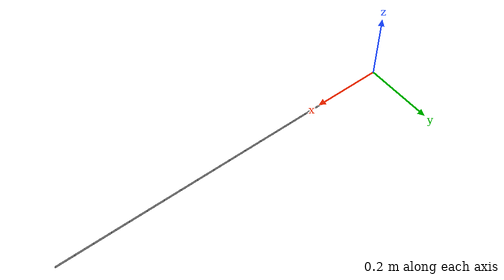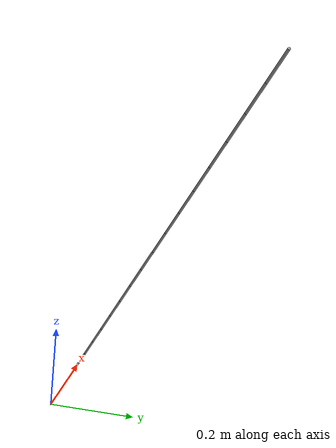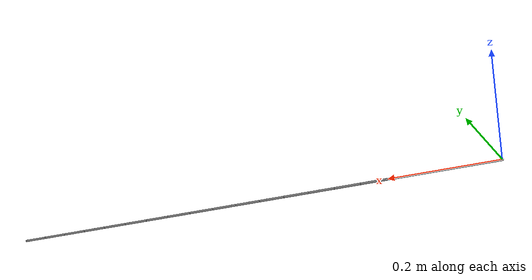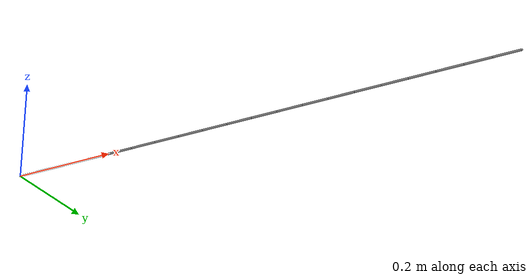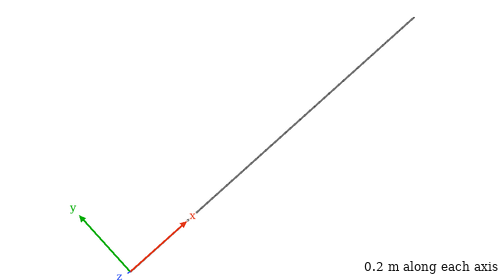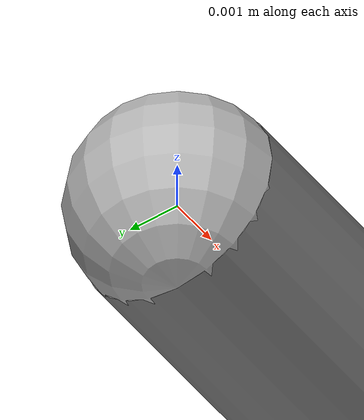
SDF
<?xml version="1.0" encoding="UTF-8"?>
<sdf version='1.9'>
  <model name='rope'>
    <enable_wind>true</enable_wind>
    <static>false</static>
    <link name='begin_link'>
      <pose>0 0 0 0 0 0</pose>
      <inertial>
        <mass>0.001</mass>
        <inertia>
          <ixx>4e-08</ixx>
          <iyy>4e-08</iyy>
          <izz>4e-08</izz>
        </inertia>
      </inertial>
       <collision name='begin_link_collision'>
        <geometry>
          <sphere>
            <radius>0.002</radius>
          </sphere>
        </geometry>
      </collision>
      <visual name='begin_link_visual'>
        <geometry>
          <sphere>
            <radius>0.002</radius>
          </sphere>
        </geometry>
      </visual>
    </link>
    <link name='link_0'>
      <pose>0.025 0 0 0 1.570796326794896558 0</pose>
      <inertial>
        <mass>0.0024</mass>
        <inertia>
          <ixx>5.1e-05</ixx>
          <iyy>5.1e-05</iyy>
          <izz>3.0e-06</izz>
        </inertia>
      </inertial>
       <collision name='link_0_collision'>
        <geometry>
          <cylinder>
            <length>0.05</length>
            <radius>0.002</radius>
          </cylinder>
        </geometry>
      </collision>
      <visual name='link_0_vis'>
        <geometry>
          <cylinder>
            <length>0.05</length>
            <radius>0.002</radius>
          </cylinder>
        </geometry>
        <material>
          <ambient>0.5 0.5 0.5 1</ambient>
          <diffuse>0.5 0.5 0.5 1</diffuse>
          <specular>0.5 0.5 0.5 1</specular>
        </material>
      </visual>
      <velocity_decay>
        <linear>0.1</linear>
        <angular>0.1</angular>
      </velocity_decay>
    </link>
    <joint name='begin_joint_2' type='universal'>
      <pose relative_to='begin_link'/>
      <child>link_0</child>
      <parent>begin_link</parent>
      <axis>
        <xyz>1 0 0</xyz>
        <dynamics>
          <damping>0.05</damping>
        </dynamics>
      </axis>
      <axis2>
        <xyz>0 1 0</xyz>
        <dynamics>
          <damping>0.05</damping>
        </dynamics>
      </axis2>
    </joint>

    <link name='link_1'>
      <pose>0.07500000000000001 0 0 0 1.570796326794896558 0</pose>
      <inertial>
        <mass>0.0024</mass>
        <inertia>
          <ixx>5.1e-05</ixx>
          <iyy>5.1e-05</iyy>
          <izz>3.0e-06</izz>
        </inertia>
      </inertial>
       <collision name='link_1_collision'>
        <geometry>
          <cylinder>
            <length>0.05</length>
            <radius>0.002</radius>
          </cylinder>
        </geometry>
      </collision>
      <visual name='link_1_vis'>
        <geometry>
          <cylinder>
            <length>0.05</length>
            <radius>0.002</radius>
          </cylinder>
        </geometry>
        <material>
          <ambient>0.5 0.5 0.5 1</ambient>
          <diffuse>0.5 0.5 0.5 1</diffuse>
          <specular>0.5 0.5 0.5 1</specular>
        </material>
      </visual>
      <velocity_decay>
        <linear>0.1</linear>
        <angular>0.1</angular>
      </velocity_decay>
    </link>
    <joint name='joint_1_2' type='universal'>
      <pose relative_to='link_0'>0 0 0.025 0 0 0</pose>
      <child>link_1</child>
      <parent>link_0</parent>
      <axis>
        <xyz expressed_in='link_0'>1 0 0</xyz>
        <limit>
          <lower>-3.141592653589793</lower>
          <upper>3.141592653589793</upper>
          <effort>50.0</effort>
          <velocity>10</velocity>
        </limit>
        <dynamics>
          <damping>0.05</damping>
        </dynamics>
      </axis>
      <axis2>
        <xyz expressed_in='link_0'>0 1 0</xyz>
        <limit>
          <lower>-3.141592653589793</lower>
          <upper>3.141592653589793</upper>
          <effort>50.0</effort>
          <velocity>10</velocity>
        </limit>
        <dynamics>
          <damping>0.05</damping>
        </dynamics>
      </axis2>
    </joint>
    <link name='link_2'>
      <pose>0.125 0 0 0 1.570796326794896558 0</pose>
      <inertial>
        <mass>0.0024</mass>
        <inertia>
          <ixx>5.1e-05</ixx>
          <iyy>5.1e-05</iyy>
          <izz>3.0e-06</izz>
        </inertia>
      </inertial>
       <collision name='link_2_collision'>
        <geometry>
          <cylinder>
            <length>0.05</length>
            <radius>0.002</radius>
          </cylinder>
        </geometry>
      </collision>
      <visual name='link_2_vis'>
        <geometry>
          <cylinder>
            <length>0.05</length>
            <radius>0.002</radius>
          </cylinder>
        </geometry>
        <material>
          <ambient>0.5 0.5 0.5 1</ambient>
          <diffuse>0.5 0.5 0.5 1</diffuse>
          <specular>0.5 0.5 0.5 1</specular>
        </material>
      </visual>
      <velocity_decay>
        <linear>0.1</linear>
        <angular>0.1</angular>
      </velocity_decay>
    </link>
    <joint name='joint_2_2' type='universal'>
      <pose relative_to='link_1'>0 0 0.025 0 0 0</pose>
      <child>link_2</child>
      <parent>link_1</parent>
      <axis>
        <xyz expressed_in='link_1'>1 0 0</xyz>
        <limit>
          <lower>-3.141592653589793</lower>
          <upper>3.141592653589793</upper>
          <effort>50.0</effort>
          <velocity>10</velocity>
        </limit>
        <dynamics>
          <damping>0.05</damping>
        </dynamics>
      </axis>
      <axis2>
        <xyz expressed_in='link_1'>0 1 0</xyz>
        <limit>
          <lower>-3.141592653589793</lower>
          <upper>3.141592653589793</upper>
          <effort>50.0</effort>
          <velocity>10</velocity>
        </limit>
        <dynamics>
          <damping>0.05</damping>
        </dynamics>
      </axis2>
    </joint>
    <link name='link_3'>
      <pose>0.17500000000000002 0 0 0 1.570796326794896558 0</pose>
      <inertial>
        <mass>0.0024</mass>
        <inertia>
          <ixx>5.1e-05</ixx>
          <iyy>5.1e-05</iyy>
          <izz>3.0e-06</izz>
        </inertia>
      </inertial>
       <collision name='link_3_collision'>
        <geometry>
          <cylinder>
            <length>0.05</length>
            <radius>0.002</radius>
          </cylinder>
        </geometry>
      </collision>
      <visual name='link_3_vis'>
        <geometry>
          <cylinder>
            <length>0.05</length>
            <radius>0.002</radius>
          </cylinder>
        </geometry>
        <material>
          <ambient>0.5 0.5 0.5 1</ambient>
          <diffuse>0.5 0.5 0.5 1</diffuse>
          <specular>0.5 0.5 0.5 1</specular>
        </material>
      </visual>
      <velocity_decay>
        <linear>0.1</linear>
        <angular>0.1</angular>
      </velocity_decay>
    </link>
    <joint name='joint_3_2' type='universal'>
      <pose relative_to='link_2'>0 0 0.025 0 0 0</pose>
      <child>link_3</child>
      <parent>link_2</parent>
      <axis>
        <xyz expressed_in='link_2'>1 0 0</xyz>
        <limit>
          <lower>-3.141592653589793</lower>
          <upper>3.141592653589793</upper>
          <effort>50.0</effort>
          <velocity>10</velocity>
        </limit>
        <dynamics>
          <damping>0.05</damping>
        </dynamics>
      </axis>
      <axis2>
        <xyz expressed_in='link_2'>0 1 0</xyz>
        <limit>
          <lower>-3.141592653589793</lower>
          <upper>3.141592653589793</upper>
          <effort>50.0</effort>
          <velocity>10</velocity>
        </limit>
        <dynamics>
          <damping>0.05</damping>
        </dynamics>
      </axis2>
    </joint>
    <link name='link_4'>
      <pose>0.225 0 0 0 1.570796326794896558 0</pose>
      <inertial>
        <mass>0.0024</mass>
        <inertia>
          <ixx>5.1e-05</ixx>
          <iyy>5.1e-05</iyy>
          <izz>3.0e-06</izz>
        </inertia>
      </inertial>
       <collision name='link_4_collision'>
        <geometry>
          <cylinder>
            <length>0.05</length>
            <radius>0.002</radius>
          </cylinder>
        </geometry>
      </collision>
      <visual name='link_4_vis'>
        <geometry>
          <cylinder>
            <length>0.05</length>
            <radius>0.002</radius>
          </cylinder>
        </geometry>
        <material>
          <ambient>0.5 0.5 0.5 1</ambient>
          <diffuse>0.5 0.5 0.5 1</diffuse>
          <specular>0.5 0.5 0.5 1</specular>
        </material>
      </visual>
      <velocity_decay>
        <linear>0.1</linear>
        <angular>0.1</angular>
      </velocity_decay>
    </link>
    <joint name='joint_4_2' type='universal'>
      <pose relative_to='link_3'>0 0 0.025 0 0 0</pose>
      <child>link_4</child>
      <parent>link_3</parent>
      <axis>
        <xyz expressed_in='link_3'>1 0 0</xyz>
        <limit>
          <lower>-3.141592653589793</lower>
          <upper>3.141592653589793</upper>
          <effort>50.0</effort>
          <velocity>10</velocity>
        </limit>
        <dynamics>
          <damping>0.05</damping>
        </dynamics>
      </axis>
      <axis2>
        <xyz expressed_in='link_3'>0 1 0</xyz>
        <limit>
          <lower>-3.141592653589793</lower>
          <upper>3.141592653589793</upper>
          <effort>50.0</effort>
          <velocity>10</velocity>
        </limit>
        <dynamics>
          <damping>0.05</damping>
        </dynamics>
      </axis2>
    </joint>
    <link name='link_5'>
      <pose>0.275 0 0 0 1.570796326794896558 0</pose>
      <inertial>
        <mass>0.0024</mass>
        <inertia>
          <ixx>5.1e-05</ixx>
          <iyy>5.1e-05</iyy>
          <izz>3.0e-06</izz>
        </inertia>
      </inertial>
       <collision name='link_5_collision'>
        <geometry>
          <cylinder>
            <length>0.05</length>
            <radius>0.002</radius>
          </cylinder>
        </geometry>
      </collision>
      <visual name='link_5_vis'>
        <geometry>
          <cylinder>
            <length>0.05</length>
            <radius>0.002</radius>
          </cylinder>
        </geometry>
        <material>
          <ambient>0.5 0.5 0.5 1</ambient>
          <diffuse>0.5 0.5 0.5 1</diffuse>
          <specular>0.5 0.5 0.5 1</specular>
        </material>
      </visual>
      <velocity_decay>
        <linear>0.1</linear>
        <angular>0.1</angular>
      </velocity_decay>
    </link>
    <joint name='joint_5_2' type='universal'>
      <pose relative_to='link_4'>0 0 0.025 0 0 0</pose>
      <child>link_5</child>
      <parent>link_4</parent>
      <axis>
        <xyz expressed_in='link_4'>1 0 0</xyz>
        <limit>
          <lower>-3.141592653589793</lower>
          <upper>3.141592653589793</upper>
          <effort>50.0</effort>
          <velocity>10</velocity>
        </limit>
        <dynamics>
          <damping>0.05</damping>
        </dynamics>
      </axis>
      <axis2>
        <xyz expressed_in='link_4'>0 1 0</xyz>
        <limit>
          <lower>-3.141592653589793</lower>
          <upper>3.141592653589793</upper>
          <effort>50.0</effort>
          <velocity>10</velocity>
        </limit>
        <dynamics>
          <damping>0.05</damping>
        </dynamics>
      </axis2>
    </joint>
    <link name='link_6'>
      <pose>0.32500000000000007 0 0 0 1.570796326794896558 0</pose>
      <inertial>
        <mass>0.0024</mass>
        <inertia>
          <ixx>5.1e-05</ixx>
          <iyy>5.1e-05</iyy>
          <izz>3.0e-06</izz>
        </inertia>
      </inertial>
       <collision name='link_6_collision'>
        <geometry>
          <cylinder>
            <length>0.05</length>
            <radius>0.002</radius>
          </cylinder>
        </geometry>
      </collision>
      <visual name='link_6_vis'>
        <geometry>
          <cylinder>
            <length>0.05</length>
            <radius>0.002</radius>
          </cylinder>
        </geometry>
        <material>
          <ambient>0.5 0.5 0.5 1</ambient>
          <diffuse>0.5 0.5 0.5 1</diffuse>
          <specular>0.5 0.5 0.5 1</specular>
        </material>
      </visual>
      <velocity_decay>
        <linear>0.1</linear>
        <angular>0.1</angular>
      </velocity_decay>
    </link>
    <joint name='joint_6_2' type='universal'>
      <pose relative_to='link_5'>0 0 0.025 0 0 0</pose>
      <child>link_6</child>
      <parent>link_5</parent>
      <axis>
        <xyz expressed_in='link_5'>1 0 0</xyz>
        <limit>
          <lower>-3.141592653589793</lower>
          <upper>3.141592653589793</upper>
          <effort>50.0</effort>
          <velocity>10</velocity>
        </limit>
        <dynamics>
          <damping>0.05</damping>
        </dynamics>
      </axis>
      <axis2>
        <xyz expressed_in='link_5'>0 1 0</xyz>
        <limit>
          <lower>-3.141592653589793</lower>
          <upper>3.141592653589793</upper>
          <effort>50.0</effort>
          <velocity>10</velocity>
        </limit>
        <dynamics>
          <damping>0.05</damping>
        </dynamics>
      </axis2>
    </joint>
    <link name='link_7'>
      <pose>0.37500000000000006 0 0 0 1.570796326794896558 0</pose>
      <inertial>
        <mass>0.0024</mass>
        <inertia>
          <ixx>5.1e-05</ixx>
          <iyy>5.1e-05</iyy>
          <izz>3.0e-06</izz>
        </inertia>
      </inertial>
       <collision name='link_7_collision'>
        <geometry>
          <cylinder>
            <length>0.05</length>
            <radius>0.002</radius>
          </cylinder>
        </geometry>
      </collision>
      <visual name='link_7_vis'>
        <geometry>
          <cylinder>
            <length>0.05</length>
            <radius>0.002</radius>
          </cylinder>
        </geometry>
        <material>
          <ambient>0.5 0.5 0.5 1</ambient>
          <diffuse>0.5 0.5 0.5 1</diffuse>
          <specular>0.5 0.5 0.5 1</specular>
        </material>
      </visual>
      <velocity_decay>
        <linear>0.1</linear>
        <angular>0.1</angular>
      </velocity_decay>
    </link>
    <joint name='joint_7_2' type='universal'>
      <pose relative_to='link_6'>0 0 0.025 0 0 0</pose>
      <child>link_7</child>
      <parent>link_6</parent>
      <axis>
        <xyz expressed_in='link_6'>1 0 0</xyz>
        <limit>
          <lower>-3.141592653589793</lower>
          <upper>3.141592653589793</upper>
          <effort>50.0</effort>
          <velocity>10</velocity>
        </limit>
        <dynamics>
          <damping>0.05</damping>
        </dynamics>
      </axis>
      <axis2>
        <xyz expressed_in='link_6'>0 1 0</xyz>
        <limit>
          <lower>-3.141592653589793</lower>
          <upper>3.141592653589793</upper>
          <effort>50.0</effort>
          <velocity>10</velocity>
        </limit>
        <dynamics>
          <damping>0.05</damping>
        </dynamics>
      </axis2>
    </joint>
    <link name='link_8'>
      <pose>0.42500000000000004 0 0 0 1.570796326794896558 0</pose>
      <inertial>
        <mass>0.0024</mass>
        <inertia>
          <ixx>5.1e-05</ixx>
          <iyy>5.1e-05</iyy>
          <izz>3.0e-06</izz>
        </inertia>
      </inertial>
       <collision name='link_8_collision'>
        <geometry>
          <cylinder>
            <length>0.05</length>
            <radius>0.002</radius>
          </cylinder>
        </geometry>
      </collision>
      <visual name='link_8_vis'>
        <geometry>
          <cylinder>
            <length>0.05</length>
            <radius>0.002</radius>
          </cylinder>
        </geometry>
        <material>
          <ambient>0.5 0.5 0.5 1</ambient>
          <diffuse>0.5 0.5 0.5 1</diffuse>
          <specular>0.5 0.5 0.5 1</specular>
        </material>
      </visual>
      <velocity_decay>
        <linear>0.1</linear>
        <angular>0.1</angular>
      </velocity_decay>
    </link>
    <joint name='joint_8_2' type='universal'>
      <pose relative_to='link_7'>0 0 0.025 0 0 0</pose>
      <child>link_8</child>
      <parent>link_7</parent>
      <axis>
        <xyz expressed_in='link_7'>1 0 0</xyz>
        <limit>
          <lower>-3.141592653589793</lower>
          <upper>3.141592653589793</upper>
          <effort>50.0</effort>
          <velocity>10</velocity>
        </limit>
        <dynamics>
          <damping>0.05</damping>
        </dynamics>
      </axis>
      <axis2>
        <xyz expressed_in='link_7'>0 1 0</xyz>
        <limit>
          <lower>-3.141592653589793</lower>
          <upper>3.141592653589793</upper>
          <effort>50.0</effort>
          <velocity>10</velocity>
        </limit>
        <dynamics>
          <damping>0.05</damping>
        </dynamics>
      </axis2>
    </joint>
    <link name='link_9'>
      <pose>0.47500000000000003 0 0 0 1.570796326794896558 0</pose>
      <inertial>
        <mass>0.0024</mass>
        <inertia>
          <ixx>5.1e-05</ixx>
          <iyy>5.1e-05</iyy>
          <izz>3.0e-06</izz>
        </inertia>
      </inertial>
       <collision name='link_9_collision'>
        <geometry>
          <cylinder>
            <length>0.05</length>
            <radius>0.002</radius>
          </cylinder>
        </geometry>
      </collision>
      <visual name='link_9_vis'>
        <geometry>
          <cylinder>
            <length>0.05</length>
            <radius>0.002</radius>
          </cylinder>
        </geometry>
        <material>
          <ambient>0.5 0.5 0.5 1</ambient>
          <diffuse>0.5 0.5 0.5 1</diffuse>
          <specular>0.5 0.5 0.5 1</specular>
        </material>
      </visual>
      <velocity_decay>
        <linear>0.1</linear>
        <angular>0.1</angular>
      </velocity_decay>
    </link>
    <joint name='joint_9_2' type='universal'>
      <pose relative_to='link_8'>0 0 0.025 0 0 0</pose>
      <child>link_9</child>
      <parent>link_8</parent>
      <axis>
        <xyz expressed_in='link_8'>1 0 0</xyz>
        <limit>
          <lower>-3.141592653589793</lower>
          <upper>3.141592653589793</upper>
          <effort>50.0</effort>
          <velocity>10</velocity>
        </limit>
        <dynamics>
          <damping>0.05</damping>
        </dynamics>
      </axis>
      <axis2>
        <xyz expressed_in='link_8'>0 1 0</xyz>
        <limit>
          <lower>-3.141592653589793</lower>
          <upper>3.141592653589793</upper>
          <effort>50.0</effort>
          <velocity>10</velocity>
        </limit>
        <dynamics>
          <damping>0.05</damping>
        </dynamics>
      </axis2>
    </joint>
    <link name='link_10'>
      <pose>0.525 0 0 0 1.570796326794896558 0</pose>
      <inertial>
        <mass>0.0024</mass>
        <inertia>
          <ixx>5.1e-05</ixx>
          <iyy>5.1e-05</iyy>
          <izz>3.0e-06</izz>
        </inertia>
      </inertial>
       <collision name='link_10_collision'>
        <geometry>
          <cylinder>
            <length>0.05</length>
            <radius>0.002</radius>
          </cylinder>
        </geometry>
      </collision>
      <visual name='link_10_vis'>
        <geometry>
          <cylinder>
            <length>0.05</length>
            <radius>0.002</radius>
          </cylinder>
        </geometry>
        <material>
          <ambient>0.5 0.5 0.5 1</ambient>
          <diffuse>0.5 0.5 0.5 1</diffuse>
          <specular>0.5 0.5 0.5 1</specular>
        </material>
      </visual>
      <velocity_decay>
        <linear>0.1</linear>
        <angular>0.1</angular>
      </velocity_decay>
      <sensor name="rope_imu" type="imu">
        <always_on>1</always_on>
        <update_rate>250</update_rate>
        <visualize>true</visualize>
      </sensor>
    </link>
    <joint name='joint_10_2' type='universal'>
      <pose relative_to='link_9'>0 0 0.025 0 0 0</pose>
      <child>link_10</child>
      <parent>link_9</parent>
      <axis>
        <xyz expressed_in='link_9'>1 0 0</xyz>
        <limit>
          <lower>-3.141592653589793</lower>
          <upper>3.141592653589793</upper>
          <effort>50.0</effort>
          <velocity>10</velocity>
        </limit>
        <dynamics>
          <damping>0.05</damping>
        </dynamics>
      </axis>
      <axis2>
        <xyz expressed_in='link_9'>0 1 0</xyz>
        <limit>
          <lower>-3.141592653589793</lower>
          <upper>3.141592653589793</upper>
          <effort>50.0</effort>
          <velocity>10</velocity>
        </limit>
        <dynamics>
          <damping>0.05</damping>
        </dynamics>
      </axis2>
    </joint>
    <link name='link_11'>
      <pose>0.5750000000000001 0 0 0 1.570796326794896558 0</pose>
      <inertial>
        <mass>0.0024</mass>
        <inertia>
          <ixx>5.1e-05</ixx>
          <iyy>5.1e-05</iyy>
          <izz>3.0e-06</izz>
        </inertia>
      </inertial>
       <collision name='link_11_collision'>
        <geometry>
          <cylinder>
            <length>0.05</length>
            <radius>0.002</radius>
          </cylinder>
        </geometry>
      </collision>
      <visual name='link_11_vis'>
        <geometry>
          <cylinder>
            <length>0.05</length>
            <radius>0.002</radius>
          </cylinder>
        </geometry>
        <material>
          <ambient>0.5 0.5 0.5 1</ambient>
          <diffuse>0.5 0.5 0.5 1</diffuse>
          <specular>0.5 0.5 0.5 1</specular>
        </material>
      </visual>
      <velocity_decay>
        <linear>0.1</linear>
        <angular>0.1</angular>
      </velocity_decay>
    </link>
    <joint name='joint_11_2' type='universal'>
      <pose relative_to='link_10'>0 0 0.025 0 0 0</pose>
      <child>link_11</child>
      <parent>link_10</parent>
      <axis>
        <xyz expressed_in='link_10'>1 0 0</xyz>
        <limit>
          <lower>-3.141592653589793</lower>
          <upper>3.141592653589793</upper>
          <effort>50.0</effort>
          <velocity>10</velocity>
        </limit>
        <dynamics>
          <damping>0.05</damping>
        </dynamics>
      </axis>
      <axis2>
        <xyz expressed_in='link_10'>0 1 0</xyz>
        <limit>
          <lower>-3.141592653589793</lower>
          <upper>3.141592653589793</upper>
          <effort>50.0</effort>
          <velocity>10</velocity>
        </limit>
        <dynamics>
          <damping>0.05</damping>
        </dynamics>
      </axis2>
    </joint>
    <link name='link_12'>
      <pose>0.6250000000000001 0 0 0 1.570796326794896558 0</pose>
      <inertial>
        <mass>0.0024</mass>
        <inertia>
          <ixx>5.1e-05</ixx>
          <iyy>5.1e-05</iyy>
          <izz>3.0e-06</izz>
        </inertia>
      </inertial>
       <collision name='link_12_collision'>
        <geometry>
          <cylinder>
            <length>0.05</length>
            <radius>0.002</radius>
          </cylinder>
        </geometry>
      </collision>
      <visual name='link_12_vis'>
        <geometry>
          <cylinder>
            <length>0.05</length>
            <radius>0.002</radius>
          </cylinder>
        </geometry>
        <material>
          <ambient>0.5 0.5 0.5 1</ambient>
          <diffuse>0.5 0.5 0.5 1</diffuse>
          <specular>0.5 0.5 0.5 1</specular>
        </material>
      </visual>
      <velocity_decay>
        <linear>0.1</linear>
        <angular>0.1</angular>
      </velocity_decay>
    </link>
    <joint name='joint_12_2' type='universal'>
      <pose relative_to='link_11'>0 0 0.025 0 0 0</pose>
      <child>link_12</child>
      <parent>link_11</parent>
      <axis>
        <xyz expressed_in='link_11'>1 0 0</xyz>
        <limit>
          <lower>-3.141592653589793</lower>
          <upper>3.141592653589793</upper>
          <effort>50.0</effort>
          <velocity>10</velocity>
        </limit>
        <dynamics>
          <damping>0.05</damping>
        </dynamics>
      </axis>
      <axis2>
        <xyz expressed_in='link_11'>0 1 0</xyz>
        <limit>
          <lower>-3.141592653589793</lower>
          <upper>3.141592653589793</upper>
          <effort>50.0</effort>
          <velocity>10</velocity>
        </limit>
        <dynamics>
          <damping>0.05</damping>
        </dynamics>
      </axis2>
    </joint>
    <link name='link_13'>
      <pose>0.675 0 0 0 1.570796326794896558 0</pose>
      <inertial>
        <mass>0.0024</mass>
        <inertia>
          <ixx>5.1e-05</ixx>
          <iyy>5.1e-05</iyy>
          <izz>3.0e-06</izz>
        </inertia>
      </inertial>
       <collision name='link_13_collision'>
        <geometry>
          <cylinder>
            <length>0.05</length>
            <radius>0.002</radius>
          </cylinder>
        </geometry>
      </collision>
      <visual name='link_13_vis'>
        <geometry>
          <cylinder>
            <length>0.05</length>
            <radius>0.002</radius>
          </cylinder>
        </geometry>
        <material>
          <ambient>0.5 0.5 0.5 1</ambient>
          <diffuse>0.5 0.5 0.5 1</diffuse>
          <specular>0.5 0.5 0.5 1</specular>
        </material>
      </visual>
      <velocity_decay>
        <linear>0.1</linear>
        <angular>0.1</angular>
      </velocity_decay>
    </link>
    <joint name='joint_13_2' type='universal'>
      <pose relative_to='link_12'>0 0 0.025 0 0 0</pose>
      <child>link_13</child>
      <parent>link_12</parent>
      <axis>
        <xyz expressed_in='link_12'>1 0 0</xyz>
        <limit>
          <lower>-3.141592653589793</lower>
          <upper>3.141592653589793</upper>
          <effort>50.0</effort>
          <velocity>10</velocity>
        </limit>
        <dynamics>
          <damping>0.05</damping>
        </dynamics>
      </axis>
      <axis2>
        <xyz expressed_in='link_12'>0 1 0</xyz>
        <limit>
          <lower>-3.141592653589793</lower>
          <upper>3.141592653589793</upper>
          <effort>50.0</effort>
          <velocity>10</velocity>
        </limit>
        <dynamics>
          <damping>0.05</damping>
        </dynamics>
      </axis2>
    </joint>
    <link name='link_14'>
      <pose>0.7250000000000001 0 0 0 1.570796326794896558 0</pose>
      <inertial>
        <mass>0.0024</mass>
        <inertia>
          <ixx>5.1e-05</ixx>
          <iyy>5.1e-05</iyy>
          <izz>3.0e-06</izz>
        </inertia>
      </inertial>
       <collision name='link_14_collision'>
        <geometry>
          <cylinder>
            <length>0.05</length>
            <radius>0.002</radius>
          </cylinder>
        </geometry>
      </collision>
      <visual name='link_14_vis'>
        <geometry>
          <cylinder>
            <length>0.05</length>
            <radius>0.002</radius>
          </cylinder>
        </geometry>
        <material>
          <ambient>0.5 0.5 0.5 1</ambient>
          <diffuse>0.5 0.5 0.5 1</diffuse>
          <specular>0.5 0.5 0.5 1</specular>
        </material>
      </visual>
      <velocity_decay>
        <linear>0.1</linear>
        <angular>0.1</angular>
      </velocity_decay>
    </link>
    <joint name='joint_14_2' type='universal'>
      <pose relative_to='link_13'>0 0 0.025 0 0 0</pose>
      <child>link_14</child>
      <parent>link_13</parent>
      <axis>
        <xyz expressed_in='link_13'>1 0 0</xyz>
        <limit>
          <lower>-3.141592653589793</lower>
          <upper>3.141592653589793</upper>
          <effort>50.0</effort>
          <velocity>10</velocity>
        </limit>
        <dynamics>
          <damping>0.05</damping>
        </dynamics>
      </axis>
      <axis2>
        <xyz expressed_in='link_13'>0 1 0</xyz>
        <limit>
          <lower>-3.141592653589793</lower>
          <upper>3.141592653589793</upper>
          <effort>50.0</effort>
          <velocity>10</velocity>
        </limit>
        <dynamics>
          <damping>0.05</damping>
        </dynamics>
      </axis2>
    </joint>
    <link name='link_15'>
      <pose>0.775 0 0 0 1.570796326794896558 0</pose>
      <inertial>
        <mass>0.0024</mass>
        <inertia>
          <ixx>5.1e-05</ixx>
          <iyy>5.1e-05</iyy>
          <izz>3.0e-06</izz>
        </inertia>
      </inertial>
       <collision name='link_15_collision'>
        <geometry>
          <cylinder>
            <length>0.05</length>
            <radius>0.002</radius>
          </cylinder>
        </geometry>
      </collision>
      <visual name='link_15_vis'>
        <geometry>
          <cylinder>
            <length>0.05</length>
            <radius>0.002</radius>
          </cylinder>
        </geometry>
        <material>
          <ambient>0.5 0.5 0.5 1</ambient>
          <diffuse>0.5 0.5 0.5 1</diffuse>
          <specular>0.5 0.5 0.5 1</specular>
        </material>
      </visual>
      <velocity_decay>
        <linear>0.1</linear>
        <angular>0.1</angular>
      </velocity_decay>
    </link>
    <joint name='joint_15_2' type='universal'>
      <pose relative_to='link_14'>0 0 0.025 0 0 0</pose>
      <child>link_15</child>
      <parent>link_14</parent>
      <axis>
        <xyz expressed_in='link_14'>1 0 0</xyz>
        <limit>
          <lower>-3.141592653589793</lower>
          <upper>3.141592653589793</upper>
          <effort>50.0</effort>
          <velocity>10</velocity>
        </limit>
        <dynamics>
          <damping>0.05</damping>
        </dynamics>
      </axis>
      <axis2>
        <xyz expressed_in='link_14'>0 1 0</xyz>
        <limit>
          <lower>-3.141592653589793</lower>
          <upper>3.141592653589793</upper>
          <effort>50.0</effort>
          <velocity>10</velocity>
        </limit>
        <dynamics>
          <damping>0.05</damping>
        </dynamics>
      </axis2>
    </joint>
    <link name='link_16'>
      <pose>0.8250000000000001 0 0 0 1.570796326794896558 0</pose>
      <inertial>
        <mass>0.0024</mass>
        <inertia>
          <ixx>5.1e-05</ixx>
          <iyy>5.1e-05</iyy>
          <izz>3.0e-06</izz>
        </inertia>
      </inertial>
       <collision name='link_16_collision'>
        <geometry>
          <cylinder>
            <length>0.05</length>
            <radius>0.002</radius>
          </cylinder>
        </geometry>
      </collision>
      <visual name='link_16_vis'>
        <geometry>
          <cylinder>
            <length>0.05</length>
            <radius>0.002</radius>
          </cylinder>
        </geometry>
        <material>
          <ambient>0.5 0.5 0.5 1</ambient>
          <diffuse>0.5 0.5 0.5 1</diffuse>
          <specular>0.5 0.5 0.5 1</specular>
        </material>
      </visual>
      <velocity_decay>
        <linear>0.1</linear>
        <angular>0.1</angular>
      </velocity_decay>
    </link>
    <joint name='joint_16_2' type='universal'>
      <pose relative_to='link_15'>0 0 0.025 0 0 0</pose>
      <child>link_16</child>
      <parent>link_15</parent>
      <axis>
        <xyz expressed_in='link_15'>1 0 0</xyz>
        <limit>
          <lower>-3.141592653589793</lower>
          <upper>3.141592653589793</upper>
          <effort>50.0</effort>
          <velocity>10</velocity>
        </limit>
        <dynamics>
          <damping>0.05</damping>
        </dynamics>
      </axis>
      <axis2>
        <xyz expressed_in='link_15'>0 1 0</xyz>
        <limit>
          <lower>-3.141592653589793</lower>
          <upper>3.141592653589793</upper>
          <effort>50.0</effort>
          <velocity>10</velocity>
        </limit>
        <dynamics>
          <damping>0.05</damping>
        </dynamics>
      </axis2>
    </joint>
    <link name='link_17'>
      <pose>0.8750000000000001 0 0 0 1.570796326794896558 0</pose>
      <inertial>
        <mass>0.0024</mass>
        <inertia>
          <ixx>5.1e-05</ixx>
          <iyy>5.1e-05</iyy>
          <izz>3.0e-06</izz>
        </inertia>
      </inertial>
       <collision name='link_17_collision'>
        <geometry>
          <cylinder>
            <length>0.05</length>
            <radius>0.002</radius>
          </cylinder>
        </geometry>
      </collision>
      <visual name='link_17_vis'>
        <geometry>
          <cylinder>
            <length>0.05</length>
            <radius>0.002</radius>
          </cylinder>
        </geometry>
        <material>
          <ambient>0.5 0.5 0.5 1</ambient>
          <diffuse>0.5 0.5 0.5 1</diffuse>
          <specular>0.5 0.5 0.5 1</specular>
        </material>
      </visual>
      <velocity_decay>
        <linear>0.1</linear>
        <angular>0.1</angular>
      </velocity_decay>
    </link>
    <joint name='joint_17_2' type='universal'>
      <pose relative_to='link_16'>0 0 0.025 0 0 0</pose>
      <child>link_17</child>
      <parent>link_16</parent>
      <axis>
        <xyz expressed_in='link_16'>1 0 0</xyz>
        <limit>
          <lower>-3.141592653589793</lower>
          <upper>3.141592653589793</upper>
          <effort>50.0</effort>
          <velocity>10</velocity>
        </limit>
        <dynamics>
          <damping>0.05</damping>
        </dynamics>
      </axis>
      <axis2>
        <xyz expressed_in='link_16'>0 1 0</xyz>
        <limit>
          <lower>-3.141592653589793</lower>
          <upper>3.141592653589793</upper>
          <effort>50.0</effort>
          <velocity>10</velocity>
        </limit>
        <dynamics>
          <damping>0.05</damping>
        </dynamics>
      </axis2>
    </joint>
    <link name='link_18'>
      <pose>0.925 0 0 0 1.570796326794896558 0</pose>
      <inertial>
        <mass>0.0024</mass>
        <inertia>
          <ixx>5.1e-05</ixx>
          <iyy>5.1e-05</iyy>
          <izz>3.0e-06</izz>
        </inertia>
      </inertial>
       <collision name='link_18_collision'>
        <geometry>
          <cylinder>
            <length>0.05</length>
            <radius>0.002</radius>
          </cylinder>
        </geometry>
      </collision>
      <visual name='link_18_vis'>
        <geometry>
          <cylinder>
            <length>0.05</length>
            <radius>0.002</radius>
          </cylinder>
        </geometry>
        <material>
          <ambient>0.5 0.5 0.5 1</ambient>
          <diffuse>0.5 0.5 0.5 1</diffuse>
          <specular>0.5 0.5 0.5 1</specular>
        </material>
      </visual>
      <velocity_decay>
        <linear>0.1</linear>
        <angular>0.1</angular>
      </velocity_decay>
    </link>
    <joint name='joint_18_2' type='universal'>
      <pose relative_to='link_17'>0 0 0.025 0 0 0</pose>
      <child>link_18</child>
      <parent>link_17</parent>
      <axis>
        <xyz expressed_in='link_17'>1 0 0</xyz>
        <limit>
          <lower>-3.141592653589793</lower>
          <upper>3.141592653589793</upper>
          <effort>50.0</effort>
          <velocity>10</velocity>
        </limit>
        <dynamics>
          <damping>0.05</damping>
        </dynamics>
      </axis>
      <axis2>
        <xyz expressed_in='link_17'>0 1 0</xyz>
        <limit>
          <lower>-3.141592653589793</lower>
          <upper>3.141592653589793</upper>
          <effort>50.0</effort>
          <velocity>10</velocity>
        </limit>
        <dynamics>
          <damping>0.05</damping>
        </dynamics>
      </axis2>
    </joint>
    <link name='link_19'>
      <pose>0.9750000000000001 0 0 0 1.570796326794896558 0</pose>
      <inertial>
        <mass>0.0024</mass>
        <inertia>
          <ixx>5.1e-05</ixx>
          <iyy>5.1e-05</iyy>
          <izz>3.0e-06</izz>
        </inertia>
      </inertial>
       <collision name='link_19_collision'>
        <geometry>
          <cylinder>
            <length>0.05</length>
            <radius>0.002</radius>
          </cylinder>
        </geometry>
      </collision>
      <visual name='link_19_vis'>
        <geometry>
          <cylinder>
            <length>0.05</length>
            <radius>0.002</radius>
          </cylinder>
        </geometry>
        <material>
          <ambient>0.5 0.5 0.5 1</ambient>
          <diffuse>0.5 0.5 0.5 1</diffuse>
          <specular>0.5 0.5 0.5 1</specular>
        </material>
      </visual>
      <velocity_decay>
        <linear>0.1</linear>
        <angular>0.1</angular>
      </velocity_decay>
    </link>
    <joint name='joint_19_2' type='universal'>
      <pose relative_to='link_18'>0 0 0.025 0 0 0</pose>
      <child>link_19</child>
      <parent>link_18</parent>
      <axis>
        <xyz expressed_in='link_18'>1 0 0</xyz>
        <limit>
          <lower>-3.141592653589793</lower>
          <upper>3.141592653589793</upper>
          <effort>50.0</effort>
          <velocity>10</velocity>
        </limit>
        <dynamics>
          <damping>0.05</damping>
        </dynamics>
      </axis>
      <axis2>
        <xyz expressed_in='link_18'>0 1 0</xyz>
        <limit>
          <lower>-3.141592653589793</lower>
          <upper>3.141592653589793</upper>
          <effort>50.0</effort>
          <velocity>10</velocity>
        </limit>
        <dynamics>
          <damping>0.05</damping>
        </dynamics>
      </axis2>
    </joint>
    <link name='end_link'>
      <pose>1.0 0 0 0 0 0</pose>
      <inertial>
        <mass>0.001</mass>
        <inertia>
          <ixx>4e-08</ixx>
          <iyy>4e-08</iyy>
          <izz>4e-08</izz>
        </inertia>
      </inertial>
       <collision name='end_link_collision'>
        <geometry>
          <sphere>
            <radius>0.002</radius>
          </sphere>
        </geometry>
      </collision>
      <visual name='end_link_visual'>
        <geometry>
          <sphere>
            <radius>0.002</radius>
          </sphere>
        </geometry>
      </visual>
    </link>
    <joint name='joint_end_1' type='universal'>
      <pose relative_to='end_link'/>
      <child>end_link</child>
      <parent>link_19</parent>
      <axis>
        <xyz>0 0 1</xyz>
        <dynamics>
          <damping>0.05</damping>
        </dynamics>
      </axis>
      <axis2>
        <xyz>0 1 0</xyz>
        <dynamics>
          <damping>0.05</damping>
        </dynamics>
      </axis2>
    </joint>
  </model>
</sdf>
